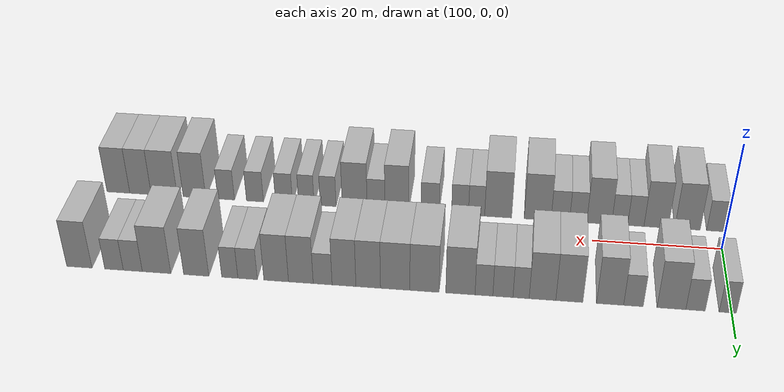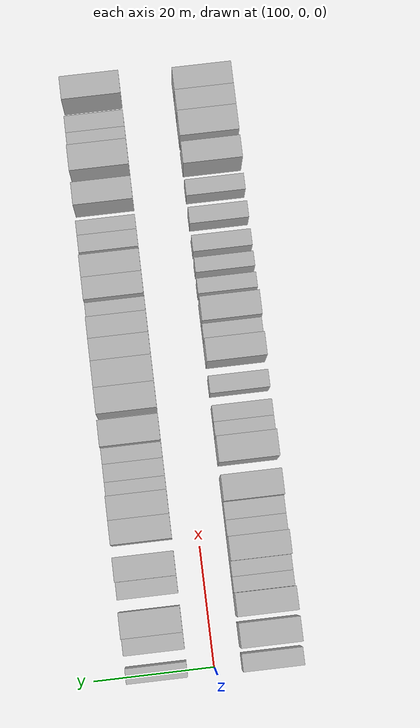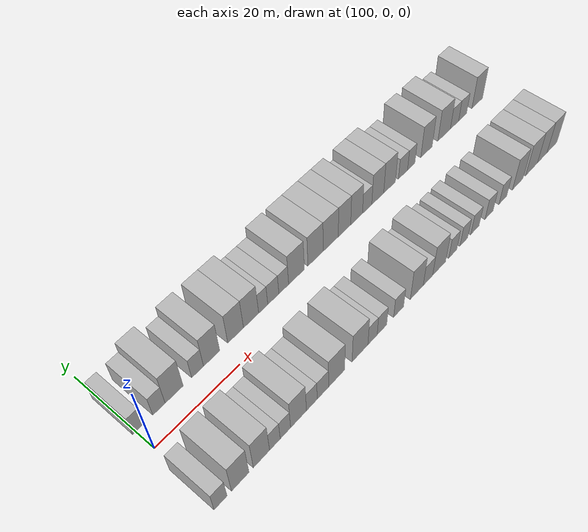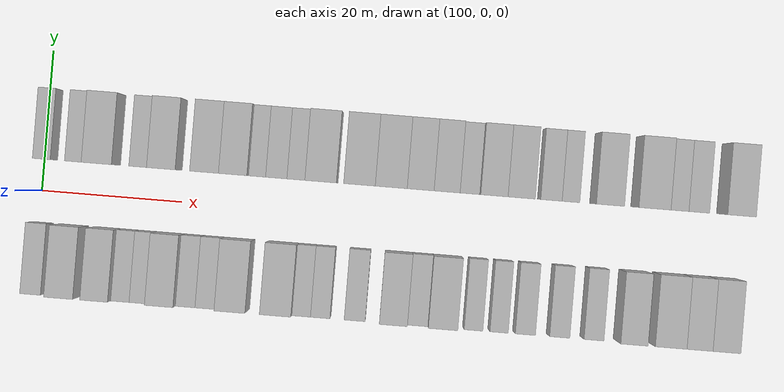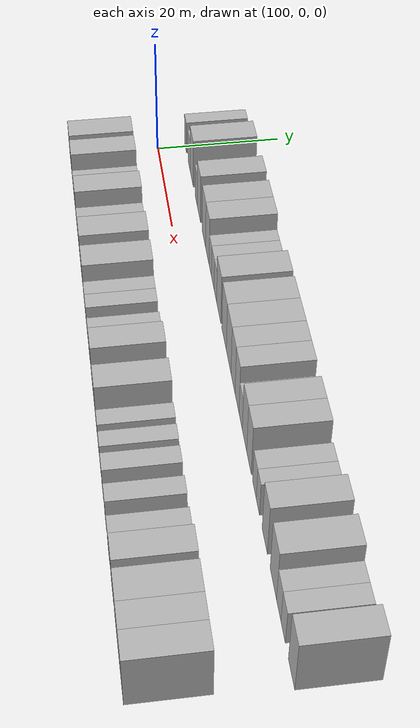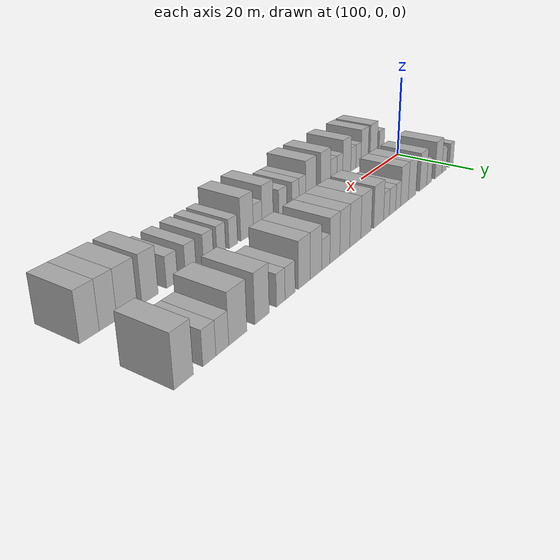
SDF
<sdf version="1.6">
 <world name="default">
  <model name="building_26">
   <static>1</static>
   <pose>100.5548 9.5000 0 0.000000 0.000000 1.570796</pose>
   <link name="link">
    <pose>0 0 3.00 0 0 0</pose>
    <collision name="collision"><geometry><box><size>10.0000 2.5036 6.0000</size></box></geometry></collision>
    <visual name="visual">
     <cast_shadows>0</cast_shadows>
     <geometry><box><size>10.0000 2.5036 6.0000</size></box></geometry>
     <material>
      <script>
       <uri>model://HANNAS_wall/materials/scripts</uri>
       <uri>model://HANNAS_wall/materials/textures</uri>
       <name>vrc/HANNAS_wall</name>
      </script>
     </material>
    </visual>
   </link>
  </model>
  <model name="building_27">
   <static>1</static>
   <pose>105.2196 9.5000 0 0.000000 0.000000 1.570796</pose>
   <link name="link">
    <pose>0 0 3.00 0 0 0</pose>
    <collision name="collision"><geometry><box><size>10.0000 2.8261 6.0000</size></box></geometry></collision>
    <visual name="visual">
     <cast_shadows>0</cast_shadows>
     <geometry><box><size>10.0000 2.8261 6.0000</size></box></geometry>
     <material>
      <script>
       <uri>model://HANNAS_wall/materials/scripts</uri>
       <uri>model://HANNAS_wall/materials/textures</uri>
       <name>vrc/HANNAS_wall</name>
      </script>
     </material>
    </visual>
   </link>
  </model>
  <model name="building_28">
   <static>1</static>
   <pose>108.7303 9.5000 0 0.000000 0.000000 1.570796</pose>
   <link name="link">
    <pose>0 0 4.50 0 0 0</pose>
    <collision name="collision"><geometry><box><size>10.0000 4.1952 9.0000</size></box></geometry></collision>
    <visual name="visual">
     <cast_shadows>0</cast_shadows>
     <geometry><box><size>10.0000 4.1952 9.0000</size></box></geometry>
     <material>
      <script>
       <uri>model://HANNAS_wall/materials/scripts</uri>
       <uri>model://HANNAS_wall/materials/textures</uri>
       <name>vrc/HANNAS_wall</name>
      </script>
     </material>
    </visual>
   </link>
  </model>
  <model name="building_29">
   <static>1</static>
   <pose>114.2613 9.5000 0 0.000000 0.000000 1.570796</pose>
   <link name="link">
    <pose>0 0 3.00 0 0 0</pose>
    <collision name="collision"><geometry><box><size>10.0000 2.8669 6.0000</size></box></geometry></collision>
    <visual name="visual">
     <cast_shadows>0</cast_shadows>
     <geometry><box><size>10.0000 2.8669 6.0000</size></box></geometry>
     <material>
      <script>
       <uri>model://HANNAS_wall/materials/scripts</uri>
       <uri>model://HANNAS_wall/materials/textures</uri>
       <name>vrc/HANNAS_wall</name>
      </script>
     </material>
    </visual>
   </link>
  </model>
  <model name="building_30">
   <static>1</static>
   <pose>117.6817 9.5000 0 0.000000 0.000000 1.570796</pose>
   <link name="link">
    <pose>0 0 4.50 0 0 0</pose>
    <collision name="collision"><geometry><box><size>10.0000 3.9738 9.0000</size></box></geometry></collision>
    <visual name="visual">
     <cast_shadows>0</cast_shadows>
     <geometry><box><size>10.0000 3.9738 9.0000</size></box></geometry>
     <material>
      <script>
       <uri>model://HANNAS_wall/materials/scripts</uri>
       <uri>model://HANNAS_wall/materials/textures</uri>
       <name>vrc/HANNAS_wall</name>
      </script>
     </material>
    </visual>
   </link>
  </model>
  <model name="building_31">
   <static>1</static>
   <pose>123.6691 9.5000 0 0.000000 0.000000 1.570796</pose>
   <link name="link">
    <pose>0 0 4.50 0 0 0</pose>
    <collision name="collision"><geometry><box><size>10.0000 4.0010 9.0000</size></box></geometry></collision>
    <visual name="visual">
     <cast_shadows>0</cast_shadows>
     <geometry><box><size>10.0000 4.0010 9.0000</size></box></geometry>
     <material>
      <script>
       <uri>model://HANNAS_wall/materials/scripts</uri>
       <uri>model://HANNAS_wall/materials/textures</uri>
       <name>vrc/HANNAS_wall</name>
      </script>
     </material>
    </visual>
   </link>
  </model>
  <model name="building_32">
   <static>1</static>
   <pose>127.6416 9.5000 0 0.000000 0.000000 1.570796</pose>
   <link name="link">
    <pose>0 0 4.50 0 0 0</pose>
    <collision name="collision"><geometry><box><size>10.0000 3.9440 9.0000</size></box></geometry></collision>
    <visual name="visual">
     <cast_shadows>0</cast_shadows>
     <geometry><box><size>10.0000 3.9440 9.0000</size></box></geometry>
     <material>
      <script>
       <uri>model://HANNAS_wall/materials/scripts</uri>
       <uri>model://HANNAS_wall/materials/textures</uri>
       <name>vrc/HANNAS_wall</name>
      </script>
     </material>
    </visual>
   </link>
  </model>
  <model name="building_33">
   <static>1</static>
   <pose>130.8150 9.5000 0 0.000000 0.000000 1.570796</pose>
   <link name="link">
    <pose>0 0 3.00 0 0 0</pose>
    <collision name="collision"><geometry><box><size>10.0000 2.4028 6.0000</size></box></geometry></collision>
    <visual name="visual">
     <cast_shadows>0</cast_shadows>
     <geometry><box><size>10.0000 2.4028 6.0000</size></box></geometry>
     <material>
      <script>
       <uri>model://HANNAS_wall/materials/scripts</uri>
       <uri>model://HANNAS_wall/materials/textures</uri>
       <name>vrc/HANNAS_wall</name>
      </script>
     </material>
    </visual>
   </link>
  </model>
  <model name="building_34">
   <static>1</static>
   <pose>133.5096 9.5000 0 0.000000 0.000000 1.570796</pose>
   <link name="link">
    <pose>0 0 3.00 0 0 0</pose>
    <collision name="collision"><geometry><box><size>10.0000 2.9864 6.0000</size></box></geometry></collision>
    <visual name="visual">
     <cast_shadows>0</cast_shadows>
     <geometry><box><size>10.0000 2.9864 6.0000</size></box></geometry>
     <material>
      <script>
       <uri>model://HANNAS_wall/materials/scripts</uri>
       <uri>model://HANNAS_wall/materials/textures</uri>
       <name>vrc/HANNAS_wall</name>
      </script>
     </material>
    </visual>
   </link>
  </model>
  <model name="building_35">
   <static>1</static>
   <pose>136.3296 9.5000 0 0.000000 0.000000 1.570796</pose>
   <link name="link">
    <pose>0 0 3.00 0 0 0</pose>
    <collision name="collision"><geometry><box><size>10.0000 2.6536 6.0000</size></box></geometry></collision>
    <visual name="visual">
     <cast_shadows>0</cast_shadows>
     <geometry><box><size>10.0000 2.6536 6.0000</size></box></geometry>
     <material>
      <script>
       <uri>model://HANNAS_wall/materials/scripts</uri>
       <uri>model://HANNAS_wall/materials/textures</uri>
       <name>vrc/HANNAS_wall</name>
      </script>
     </material>
    </visual>
   </link>
  </model>
  <model name="building_36">
   <static>1</static>
   <pose>139.8455 9.5000 0 0.000000 0.000000 1.570796</pose>
   <link name="link">
    <pose>0 0 4.50 0 0 0</pose>
    <collision name="collision"><geometry><box><size>10.0000 4.3783 9.0000</size></box></geometry></collision>
    <visual name="visual">
     <cast_shadows>0</cast_shadows>
     <geometry><box><size>10.0000 4.3783 9.0000</size></box></geometry>
     <material>
      <script>
       <uri>model://HANNAS_wall/materials/scripts</uri>
       <uri>model://HANNAS_wall/materials/textures</uri>
       <name>vrc/HANNAS_wall</name>
      </script>
     </material>
    </visual>
   </link>
  </model>
  <model name="building_37">
   <static>1</static>
   <pose>145.2298 9.5000 0 0.000000 0.000000 1.570796</pose>
   <link name="link">
    <pose>0 0 4.50 0 0 0</pose>
    <collision name="collision"><geometry><box><size>10.0000 4.3902 9.0000</size></box></geometry></collision>
    <visual name="visual">
     <cast_shadows>0</cast_shadows>
     <geometry><box><size>10.0000 4.3902 9.0000</size></box></geometry>
     <material>
      <script>
       <uri>model://HANNAS_wall/materials/scripts</uri>
       <uri>model://HANNAS_wall/materials/textures</uri>
       <name>vrc/HANNAS_wall</name>
      </script>
     </material>
    </visual>
   </link>
  </model>
  <model name="building_38">
   <static>1</static>
   <pose>149.6399 9.5000 0 0.000000 0.000000 1.570796</pose>
   <link name="link">
    <pose>0 0 4.50 0 0 0</pose>
    <collision name="collision"><geometry><box><size>10.0000 4.4301 9.0000</size></box></geometry></collision>
    <visual name="visual">
     <cast_shadows>0</cast_shadows>
     <geometry><box><size>10.0000 4.4301 9.0000</size></box></geometry>
     <material>
      <script>
       <uri>model://HANNAS_wall/materials/scripts</uri>
       <uri>model://HANNAS_wall/materials/textures</uri>
       <name>vrc/HANNAS_wall</name>
      </script>
     </material>
    </visual>
   </link>
  </model>
  <model name="building_39">
   <static>1</static>
   <pose>153.7185 9.5000 0 0.000000 0.000000 1.570796</pose>
   <link name="link">
    <pose>0 0 4.50 0 0 0</pose>
    <collision name="collision"><geometry><box><size>10.0000 3.7272 9.0000</size></box></geometry></collision>
    <visual name="visual">
     <cast_shadows>0</cast_shadows>
     <geometry><box><size>10.0000 3.7272 9.0000</size></box></geometry>
     <material>
      <script>
       <uri>model://HANNAS_wall/materials/scripts</uri>
       <uri>model://HANNAS_wall/materials/textures</uri>
       <name>vrc/HANNAS_wall</name>
      </script>
     </material>
    </visual>
   </link>
  </model>
  <model name="building_40">
   <static>1</static>
   <pose>157.3882 9.5000 0 0.000000 0.000000 1.570796</pose>
   <link name="link">
    <pose>0 0 4.50 0 0 0</pose>
    <collision name="collision"><geometry><box><size>10.0000 3.6120 9.0000</size></box></geometry></collision>
    <visual name="visual">
     <cast_shadows>0</cast_shadows>
     <geometry><box><size>10.0000 3.6120 9.0000</size></box></geometry>
     <material>
      <script>
       <uri>model://HANNAS_wall/materials/scripts</uri>
       <uri>model://HANNAS_wall/materials/textures</uri>
       <name>vrc/HANNAS_wall</name>
      </script>
     </material>
    </visual>
   </link>
  </model>
  <model name="building_41">
   <static>1</static>
   <pose>160.6313 9.5000 0 0.000000 0.000000 1.570796</pose>
   <link name="link">
    <pose>0 0 3.00 0 0 0</pose>
    <collision name="collision"><geometry><box><size>10.0000 2.8742 6.0000</size></box></geometry></collision>
    <visual name="visual">
     <cast_shadows>0</cast_shadows>
     <geometry><box><size>10.0000 2.8742 6.0000</size></box></geometry>
     <material>
      <script>
       <uri>model://HANNAS_wall/materials/scripts</uri>
       <uri>model://HANNAS_wall/materials/textures</uri>
       <name>vrc/HANNAS_wall</name>
      </script>
     </material>
    </visual>
   </link>
  </model>
  <model name="building_42">
   <static>1</static>
   <pose>163.9559 9.5000 0 0.000000 0.000000 1.570796</pose>
   <link name="link">
    <pose>0 0 4.50 0 0 0</pose>
    <collision name="collision"><geometry><box><size>10.0000 3.7749 9.0000</size></box></geometry></collision>
    <visual name="visual">
     <cast_shadows>0</cast_shadows>
     <geometry><box><size>10.0000 3.7749 9.0000</size></box></geometry>
     <material>
      <script>
       <uri>model://HANNAS_wall/materials/scripts</uri>
       <uri>model://HANNAS_wall/materials/textures</uri>
       <name>vrc/HANNAS_wall</name>
      </script>
     </material>
    </visual>
   </link>
  </model>
  <model name="building_43">
   <static>1</static>
   <pose>167.7307 9.5000 0 0.000000 0.000000 1.570796</pose>
   <link name="link">
    <pose>0 0 4.50 0 0 0</pose>
    <collision name="collision"><geometry><box><size>10.0000 3.7747 9.0000</size></box></geometry></collision>
    <visual name="visual">
     <cast_shadows>0</cast_shadows>
     <geometry><box><size>10.0000 3.7747 9.0000</size></box></geometry>
     <material>
      <script>
       <uri>model://HANNAS_wall/materials/scripts</uri>
       <uri>model://HANNAS_wall/materials/textures</uri>
       <name>vrc/HANNAS_wall</name>
      </script>
     </material>
    </visual>
   </link>
  </model>
  <model name="building_44">
   <static>1</static>
   <pose>172.1160 9.5000 0 0.000000 0.000000 1.570796</pose>
   <link name="link">
    <pose>0 0 3.00 0 0 0</pose>
    <collision name="collision"><geometry><box><size>10.0000 2.9960 6.0000</size></box></geometry></collision>
    <visual name="visual">
     <cast_shadows>0</cast_shadows>
     <geometry><box><size>10.0000 2.9960 6.0000</size></box></geometry>
     <material>
      <script>
       <uri>model://HANNAS_wall/materials/scripts</uri>
       <uri>model://HANNAS_wall/materials/textures</uri>
       <name>vrc/HANNAS_wall</name>
      </script>
     </material>
    </visual>
   </link>
  </model>
  <model name="building_45">
   <static>1</static>
   <pose>174.8545 9.5000 0 0.000000 0.000000 1.570796</pose>
   <link name="link">
    <pose>0 0 3.00 0 0 0</pose>
    <collision name="collision"><geometry><box><size>10.0000 2.4809 6.0000</size></box></geometry></collision>
    <visual name="visual">
     <cast_shadows>0</cast_shadows>
     <geometry><box><size>10.0000 2.4809 6.0000</size></box></geometry>
     <material>
      <script>
       <uri>model://HANNAS_wall/materials/scripts</uri>
       <uri>model://HANNAS_wall/materials/textures</uri>
       <name>vrc/HANNAS_wall</name>
      </script>
     </material>
    </visual>
   </link>
  </model>
  <model name="building_46">
   <static>1</static>
   <pose>180.0452 9.5000 0 0.000000 0.000000 1.570796</pose>
   <link name="link">
    <pose>0 0 4.50 0 0 0</pose>
    <collision name="collision"><geometry><box><size>10.0000 3.9005 9.0000</size></box></geometry></collision>
    <visual name="visual">
     <cast_shadows>0</cast_shadows>
     <geometry><box><size>10.0000 3.9005 9.0000</size></box></geometry>
     <material>
      <script>
       <uri>model://HANNAS_wall/materials/scripts</uri>
       <uri>model://HANNAS_wall/materials/textures</uri>
       <name>vrc/HANNAS_wall</name>
      </script>
     </material>
    </visual>
   </link>
  </model>
  <model name="building_47">
   <static>1</static>
   <pose>186.2162 9.5000 0 0.000000 0.000000 1.570796</pose>
   <link name="link">
    <pose>0 0 4.50 0 0 0</pose>
    <collision name="collision"><geometry><box><size>10.0000 4.4416 9.0000</size></box></geometry></collision>
    <visual name="visual">
     <cast_shadows>0</cast_shadows>
     <geometry><box><size>10.0000 4.4416 9.0000</size></box></geometry>
     <material>
      <script>
       <uri>model://HANNAS_wall/materials/scripts</uri>
       <uri>model://HANNAS_wall/materials/textures</uri>
       <name>vrc/HANNAS_wall</name>
      </script>
     </material>
    </visual>
   </link>
  </model>
  <model name="building_48">
   <static>1</static>
   <pose>189.9199 9.5000 0 0.000000 0.000000 1.570796</pose>
   <link name="link">
    <pose>0 0 3.00 0 0 0</pose>
    <collision name="collision"><geometry><box><size>10.0000 2.9658 6.0000</size></box></geometry></collision>
    <visual name="visual">
     <cast_shadows>0</cast_shadows>
     <geometry><box><size>10.0000 2.9658 6.0000</size></box></geometry>
     <material>
      <script>
       <uri>model://HANNAS_wall/materials/scripts</uri>
       <uri>model://HANNAS_wall/materials/textures</uri>
       <name>vrc/HANNAS_wall</name>
      </script>
     </material>
    </visual>
   </link>
  </model>
  <model name="building_49">
   <static>1</static>
   <pose>192.8548 9.5000 0 0.000000 0.000000 1.570796</pose>
   <link name="link">
    <pose>0 0 3.00 0 0 0</pose>
    <collision name="collision"><geometry><box><size>10.0000 2.9040 6.0000</size></box></geometry></collision>
    <visual name="visual">
     <cast_shadows>0</cast_shadows>
     <geometry><box><size>10.0000 2.9040 6.0000</size></box></geometry>
     <material>
      <script>
       <uri>model://HANNAS_wall/materials/scripts</uri>
       <uri>model://HANNAS_wall/materials/textures</uri>
       <name>vrc/HANNAS_wall</name>
      </script>
     </material>
    </visual>
   </link>
  </model>
  <model name="building_50">
   <static>1</static>
   <pose>198.2935 9.5000 0 0.000000 0.000000 1.570796</pose>
   <link name="link">
    <pose>0 0 4.50 0 0 0</pose>
    <collision name="collision"><geometry><box><size>10.0000 3.9733 9.0000</size></box></geometry></collision>
    <visual name="visual">
     <cast_shadows>0</cast_shadows>
     <geometry><box><size>10.0000 3.9733 9.0000</size></box></geometry>
     <material>
      <script>
       <uri>model://HANNAS_wall/materials/scripts</uri>
       <uri>model://HANNAS_wall/materials/textures</uri>
       <name>vrc/HANNAS_wall</name>
      </script>
     </material>
    </visual>
   </link>
  </model>
  <model name="building_75">
   <static>1</static>
   <pose>100.5145 -9.5000 0 0.000000 0.000000 1.570796</pose>
   <link name="link">
    <pose>0 0 3.00 0 0 0</pose>
    <collision name="collision"><geometry><box><size>10.0000 2.9106 6.0000</size></box></geometry></collision>
    <visual name="visual">
     <cast_shadows>0</cast_shadows>
     <geometry><box><size>10.0000 2.9106 6.0000</size></box></geometry>
     <material>
      <script>
       <uri>model://HANNAS_wall/materials/scripts</uri>
       <uri>model://HANNAS_wall/materials/textures</uri>
       <name>vrc/HANNAS_wall</name>
      </script>
     </material>
    </visual>
   </link>
  </model>
  <model name="building_76">
   <static>1</static>
   <pose>104.9770 -9.5000 0 0.000000 0.000000 1.570796</pose>
   <link name="link">
    <pose>0 0 4.50 0 0 0</pose>
    <collision name="collision"><geometry><box><size>10.0000 4.0143 9.0000</size></box></geometry></collision>
    <visual name="visual">
     <cast_shadows>0</cast_shadows>
     <geometry><box><size>10.0000 4.0143 9.0000</size></box></geometry>
     <material>
      <script>
       <uri>model://HANNAS_wall/materials/scripts</uri>
       <uri>model://HANNAS_wall/materials/textures</uri>
       <name>vrc/HANNAS_wall</name>
      </script>
     </material>
    </visual>
   </link>
  </model>
  <model name="building_77">
   <static>1</static>
   <pose>109.9041 -9.5000 0 0.000000 0.000000 1.570796</pose>
   <link name="link">
    <pose>0 0 4.50 0 0 0</pose>
    <collision name="collision"><geometry><box><size>10.0000 3.8398 9.0000</size></box></geometry></collision>
    <visual name="visual">
     <cast_shadows>0</cast_shadows>
     <geometry><box><size>10.0000 3.8398 9.0000</size></box></geometry>
     <material>
      <script>
       <uri>model://HANNAS_wall/materials/scripts</uri>
       <uri>model://HANNAS_wall/materials/textures</uri>
       <name>vrc/HANNAS_wall</name>
      </script>
     </material>
    </visual>
   </link>
  </model>
  <model name="building_78">
   <static>1</static>
   <pose>113.1118 -9.5000 0 0.000000 0.000000 1.570796</pose>
   <link name="link">
    <pose>0 0 3.00 0 0 0</pose>
    <collision name="collision"><geometry><box><size>10.0000 2.5757 6.0000</size></box></geometry></collision>
    <visual name="visual">
     <cast_shadows>0</cast_shadows>
     <geometry><box><size>10.0000 2.5757 6.0000</size></box></geometry>
     <material>
      <script>
       <uri>model://HANNAS_wall/materials/scripts</uri>
       <uri>model://HANNAS_wall/materials/textures</uri>
       <name>vrc/HANNAS_wall</name>
      </script>
     </material>
    </visual>
   </link>
  </model>
  <model name="building_79">
   <static>1</static>
   <pose>115.6720 -9.5000 0 0.000000 0.000000 1.570796</pose>
   <link name="link">
    <pose>0 0 3.00 0 0 0</pose>
    <collision name="collision"><geometry><box><size>10.0000 2.5446 6.0000</size></box></geometry></collision>
    <visual name="visual">
     <cast_shadows>0</cast_shadows>
     <geometry><box><size>10.0000 2.5446 6.0000</size></box></geometry>
     <material>
      <script>
       <uri>model://HANNAS_wall/materials/scripts</uri>
       <uri>model://HANNAS_wall/materials/textures</uri>
       <name>vrc/HANNAS_wall</name>
      </script>
     </material>
    </visual>
   </link>
  </model>
  <model name="building_80">
   <static>1</static>
   <pose>118.9214 -9.5000 0 0.000000 0.000000 1.570796</pose>
   <link name="link">
    <pose>0 0 4.50 0 0 0</pose>
    <collision name="collision"><geometry><box><size>10.0000 3.9543 9.0000</size></box></geometry></collision>
    <visual name="visual">
     <cast_shadows>0</cast_shadows>
     <geometry><box><size>10.0000 3.9543 9.0000</size></box></geometry>
     <material>
      <script>
       <uri>model://HANNAS_wall/materials/scripts</uri>
       <uri>model://HANNAS_wall/materials/textures</uri>
       <name>vrc/HANNAS_wall</name>
      </script>
     </material>
    </visual>
   </link>
  </model>
  <model name="building_81">
   <static>1</static>
   <pose>122.2718 -9.5000 0 0.000000 0.000000 1.570796</pose>
   <link name="link">
    <pose>0 0 3.00 0 0 0</pose>
    <collision name="collision"><geometry><box><size>10.0000 2.7464 6.0000</size></box></geometry></collision>
    <visual name="visual">
     <cast_shadows>0</cast_shadows>
     <geometry><box><size>10.0000 2.7464 6.0000</size></box></geometry>
     <material>
      <script>
       <uri>model://HANNAS_wall/materials/scripts</uri>
       <uri>model://HANNAS_wall/materials/textures</uri>
       <name>vrc/HANNAS_wall</name>
      </script>
     </material>
    </visual>
   </link>
  </model>
  <model name="building_82">
   <static>1</static>
   <pose>125.1180 -9.5000 0 0.000000 0.000000 1.570796</pose>
   <link name="link">
    <pose>0 0 3.00 0 0 0</pose>
    <collision name="collision"><geometry><box><size>10.0000 2.9461 6.0000</size></box></geometry></collision>
    <visual name="visual">
     <cast_shadows>0</cast_shadows>
     <geometry><box><size>10.0000 2.9461 6.0000</size></box></geometry>
     <material>
      <script>
       <uri>model://HANNAS_wall/materials/scripts</uri>
       <uri>model://HANNAS_wall/materials/textures</uri>
       <name>vrc/HANNAS_wall</name>
      </script>
     </material>
    </visual>
   </link>
  </model>
  <model name="building_83">
   <static>1</static>
   <pose>128.7372 -9.5000 0 0.000000 0.000000 1.570796</pose>
   <link name="link">
    <pose>0 0 4.50 0 0 0</pose>
    <collision name="collision"><geometry><box><size>10.0000 4.2923 9.0000</size></box></geometry></collision>
    <visual name="visual">
     <cast_shadows>0</cast_shadows>
     <geometry><box><size>10.0000 4.2923 9.0000</size></box></geometry>
     <material>
      <script>
       <uri>model://HANNAS_wall/materials/scripts</uri>
       <uri>model://HANNAS_wall/materials/textures</uri>
       <name>vrc/HANNAS_wall</name>
      </script>
     </material>
    </visual>
   </link>
  </model>
  <model name="building_84">
   <static>1</static>
   <pose>135.0628 -9.5000 0 0.000000 0.000000 1.570796</pose>
   <link name="link">
    <pose>0 0 4.50 0 0 0</pose>
    <collision name="collision"><geometry><box><size>10.0000 4.3589 9.0000</size></box></geometry></collision>
    <visual name="visual">
     <cast_shadows>0</cast_shadows>
     <geometry><box><size>10.0000 4.3589 9.0000</size></box></geometry>
     <material>
      <script>
       <uri>model://HANNAS_wall/materials/scripts</uri>
       <uri>model://HANNAS_wall/materials/textures</uri>
       <name>vrc/HANNAS_wall</name>
      </script>
     </material>
    </visual>
   </link>
  </model>
  <model name="building_85">
   <static>1</static>
   <pose>138.5452 -9.5000 0 0.000000 0.000000 1.570796</pose>
   <link name="link">
    <pose>0 0 3.00 0 0 0</pose>
    <collision name="collision"><geometry><box><size>10.0000 2.6058 6.0000</size></box></geometry></collision>
    <visual name="visual">
     <cast_shadows>0</cast_shadows>
     <geometry><box><size>10.0000 2.6058 6.0000</size></box></geometry>
     <material>
      <script>
       <uri>model://HANNAS_wall/materials/scripts</uri>
       <uri>model://HANNAS_wall/materials/textures</uri>
       <name>vrc/HANNAS_wall</name>
      </script>
     </material>
    </visual>
   </link>
  </model>
  <model name="building_86">
   <static>1</static>
   <pose>141.2145 -9.5000 0 0.000000 0.000000 1.570796</pose>
   <link name="link">
    <pose>0 0 3.00 0 0 0</pose>
    <collision name="collision"><geometry><box><size>10.0000 2.7327 6.0000</size></box></geometry></collision>
    <visual name="visual">
     <cast_shadows>0</cast_shadows>
     <geometry><box><size>10.0000 2.7327 6.0000</size></box></geometry>
     <material>
      <script>
       <uri>model://HANNAS_wall/materials/scripts</uri>
       <uri>model://HANNAS_wall/materials/textures</uri>
       <name>vrc/HANNAS_wall</name>
      </script>
     </material>
    </visual>
   </link>
  </model>
  <model name="building_87">
   <static>1</static>
   <pose>146.0519 -9.5000 0 0.000000 0.000000 1.570796</pose>
   <link name="link">
    <pose>0 0 3.00 0 0 0</pose>
    <collision name="collision"><geometry><box><size>10.0000 2.9422 6.0000</size></box></geometry></collision>
    <visual name="visual">
     <cast_shadows>0</cast_shadows>
     <geometry><box><size>10.0000 2.9422 6.0000</size></box></geometry>
     <material>
      <script>
       <uri>model://HANNAS_wall/materials/scripts</uri>
       <uri>model://HANNAS_wall/materials/textures</uri>
       <name>vrc/HANNAS_wall</name>
      </script>
     </material>
    </visual>
   </link>
  </model>
  <model name="building_88">
   <static>1</static>
   <pose>151.4703 -9.5000 0 0.000000 0.000000 1.570796</pose>
   <link name="link">
    <pose>0 0 4.50 0 0 0</pose>
    <collision name="collision"><geometry><box><size>10.0000 3.8946 9.0000</size></box></geometry></collision>
    <visual name="visual">
     <cast_shadows>0</cast_shadows>
     <geometry><box><size>10.0000 3.8946 9.0000</size></box></geometry>
     <material>
      <script>
       <uri>model://HANNAS_wall/materials/scripts</uri>
       <uri>model://HANNAS_wall/materials/textures</uri>
       <name>vrc/HANNAS_wall</name>
      </script>
     </material>
    </visual>
   </link>
  </model>
  <model name="building_89">
   <static>1</static>
   <pose>154.8740 -9.5000 0 0.000000 0.000000 1.570796</pose>
   <link name="link">
    <pose>0 0 3.00 0 0 0</pose>
    <collision name="collision"><geometry><box><size>10.0000 2.9127 6.0000</size></box></geometry></collision>
    <visual name="visual">
     <cast_shadows>0</cast_shadows>
     <geometry><box><size>10.0000 2.9127 6.0000</size></box></geometry>
     <material>
      <script>
       <uri>model://HANNAS_wall/materials/scripts</uri>
       <uri>model://HANNAS_wall/materials/textures</uri>
       <name>vrc/HANNAS_wall</name>
      </script>
     </material>
    </visual>
   </link>
  </model>
  <model name="building_90">
   <static>1</static>
   <pose>158.3731 -9.5000 0 0.000000 0.000000 1.570796</pose>
   <link name="link">
    <pose>0 0 4.50 0 0 0</pose>
    <collision name="collision"><geometry><box><size>10.0000 4.0857 9.0000</size></box></geometry></collision>
    <visual name="visual">
     <cast_shadows>0</cast_shadows>
     <geometry><box><size>10.0000 4.0857 9.0000</size></box></geometry>
     <material>
      <script>
       <uri>model://HANNAS_wall/materials/scripts</uri>
       <uri>model://HANNAS_wall/materials/textures</uri>
       <name>vrc/HANNAS_wall</name>
      </script>
     </material>
    </visual>
   </link>
  </model>
  <model name="building_91">
   <static>1</static>
   <pose>162.7258 -9.5000 0 0.000000 0.000000 1.570796</pose>
   <link name="link">
    <pose>0 0 3.00 0 0 0</pose>
    <collision name="collision"><geometry><box><size>10.0000 2.6197 6.0000</size></box></geometry></collision>
    <visual name="visual">
     <cast_shadows>0</cast_shadows>
     <geometry><box><size>10.0000 2.6197 6.0000</size></box></geometry>
     <material>
      <script>
       <uri>model://HANNAS_wall/materials/scripts</uri>
       <uri>model://HANNAS_wall/materials/textures</uri>
       <name>vrc/HANNAS_wall</name>
      </script>
     </material>
    </visual>
   </link>
  </model>
  <model name="building_92">
   <static>1</static>
   <pose>166.3145 -9.5000 0 0.000000 0.000000 1.570796</pose>
   <link name="link">
    <pose>0 0 3.00 0 0 0</pose>
    <collision name="collision"><geometry><box><size>10.0000 2.5576 6.0000</size></box></geometry></collision>
    <visual name="visual">
     <cast_shadows>0</cast_shadows>
     <geometry><box><size>10.0000 2.5576 6.0000</size></box></geometry>
     <material>
      <script>
       <uri>model://HANNAS_wall/materials/scripts</uri>
       <uri>model://HANNAS_wall/materials/textures</uri>
       <name>vrc/HANNAS_wall</name>
      </script>
     </material>
    </visual>
   </link>
  </model>
  <model name="building_93">
   <static>1</static>
   <pose>170.0030 -9.5000 0 0.000000 0.000000 1.570796</pose>
   <link name="link">
    <pose>0 0 3.00 0 0 0</pose>
    <collision name="collision"><geometry><box><size>10.0000 2.8194 6.0000</size></box></geometry></collision>
    <visual name="visual">
     <cast_shadows>0</cast_shadows>
     <geometry><box><size>10.0000 2.8194 6.0000</size></box></geometry>
     <material>
      <script>
       <uri>model://HANNAS_wall/materials/scripts</uri>
       <uri>model://HANNAS_wall/materials/textures</uri>
       <name>vrc/HANNAS_wall</name>
      </script>
     </material>
    </visual>
   </link>
  </model>
  <model name="building_94">
   <static>1</static>
   <pose>174.8236 -9.5000 0 0.000000 0.000000 1.570796</pose>
   <link name="link">
    <pose>0 0 3.00 0 0 0</pose>
    <collision name="collision"><geometry><box><size>10.0000 2.8220 6.0000</size></box></geometry></collision>
    <visual name="visual">
     <cast_shadows>0</cast_shadows>
     <geometry><box><size>10.0000 2.8220 6.0000</size></box></geometry>
     <material>
      <script>
       <uri>model://HANNAS_wall/materials/scripts</uri>
       <uri>model://HANNAS_wall/materials/textures</uri>
       <name>vrc/HANNAS_wall</name>
      </script>
     </material>
    </visual>
   </link>
  </model>
  <model name="building_95">
   <static>1</static>
   <pose>179.6280 -9.5000 0 0.000000 0.000000 1.570796</pose>
   <link name="link">
    <pose>0 0 3.00 0 0 0</pose>
    <collision name="collision"><geometry><box><size>10.0000 2.7867 6.0000</size></box></geometry></collision>
    <visual name="visual">
     <cast_shadows>0</cast_shadows>
     <geometry><box><size>10.0000 2.7867 6.0000</size></box></geometry>
     <material>
      <script>
       <uri>model://HANNAS_wall/materials/scripts</uri>
       <uri>model://HANNAS_wall/materials/textures</uri>
       <name>vrc/HANNAS_wall</name>
      </script>
     </material>
    </visual>
   </link>
  </model>
  <model name="building_96">
   <static>1</static>
   <pose>184.9168 -9.5000 0 0.000000 0.000000 1.570796</pose>
   <link name="link">
    <pose>0 0 4.50 0 0 0</pose>
    <collision name="collision"><geometry><box><size>10.0000 3.7910 9.0000</size></box></geometry></collision>
    <visual name="visual">
     <cast_shadows>0</cast_shadows>
     <geometry><box><size>10.0000 3.7910 9.0000</size></box></geometry>
     <material>
      <script>
       <uri>model://HANNAS_wall/materials/scripts</uri>
       <uri>model://HANNAS_wall/materials/textures</uri>
       <name>vrc/HANNAS_wall</name>
      </script>
     </material>
    </visual>
   </link>
  </model>
  <model name="building_97">
   <static>1</static>
   <pose>190.0069 -9.5000 0 0.000000 0.000000 1.570796</pose>
   <link name="link">
    <pose>0 0 4.50 0 0 0</pose>
    <collision name="collision"><geometry><box><size>10.0000 4.3891 9.0000</size></box></geometry></collision>
    <visual name="visual">
     <cast_shadows>0</cast_shadows>
     <geometry><box><size>10.0000 4.3891 9.0000</size></box></geometry>
     <material>
      <script>
       <uri>model://HANNAS_wall/materials/scripts</uri>
       <uri>model://HANNAS_wall/materials/textures</uri>
       <name>vrc/HANNAS_wall</name>
      </script>
     </material>
    </visual>
   </link>
  </model>
  <model name="building_98">
   <static>1</static>
   <pose>194.0055 -9.5000 0 0.000000 0.000000 1.570796</pose>
   <link name="link">
    <pose>0 0 4.50 0 0 0</pose>
    <collision name="collision"><geometry><box><size>10.0000 3.6081 9.0000</size></box></geometry></collision>
    <visual name="visual">
     <cast_shadows>0</cast_shadows>
     <geometry><box><size>10.0000 3.6081 9.0000</size></box></geometry>
     <material>
      <script>
       <uri>model://HANNAS_wall/materials/scripts</uri>
       <uri>model://HANNAS_wall/materials/textures</uri>
       <name>vrc/HANNAS_wall</name>
      </script>
     </material>
    </visual>
   </link>
  </model>
  <model name="building_99">
   <static>1</static>
   <pose>197.7411 -9.5000 0 0.000000 0.000000 1.570796</pose>
   <link name="link">
    <pose>0 0 4.50 0 0 0</pose>
    <collision name="collision"><geometry><box><size>10.0000 3.8632 9.0000</size></box></geometry></collision>
    <visual name="visual">
     <cast_shadows>0</cast_shadows>
     <geometry><box><size>10.0000 3.8632 9.0000</size></box></geometry>
     <material>
      <script>
       <uri>model://HANNAS_wall/materials/scripts</uri>
       <uri>model://HANNAS_wall/materials/textures</uri>
       <name>vrc/HANNAS_wall</name>
      </script>
     </material>
    </visual>
   </link>
  </model>
 </world>
</sdf>
